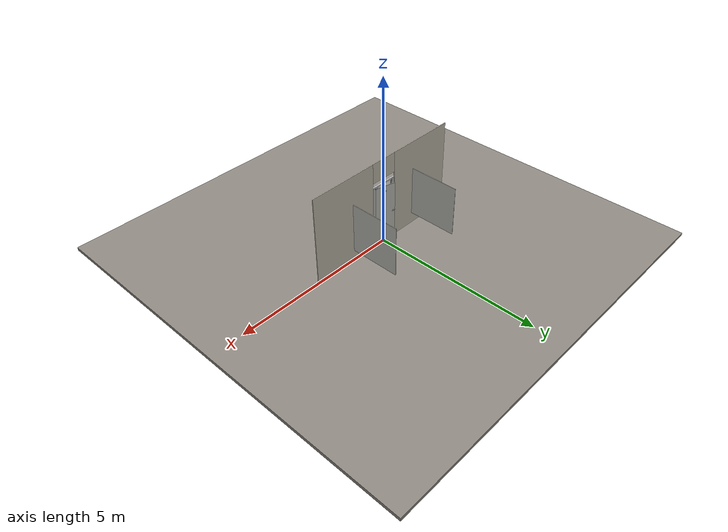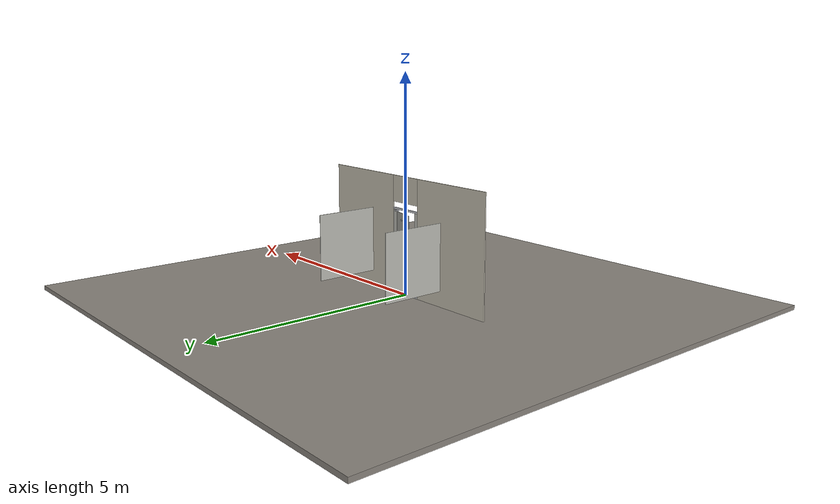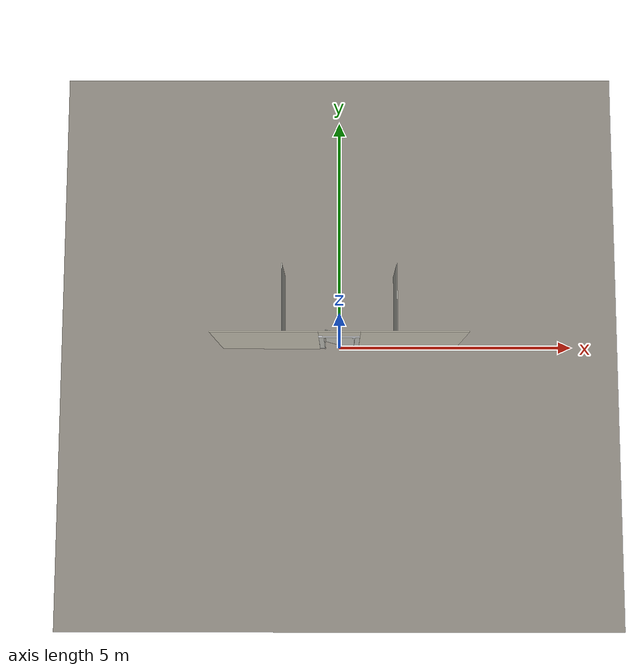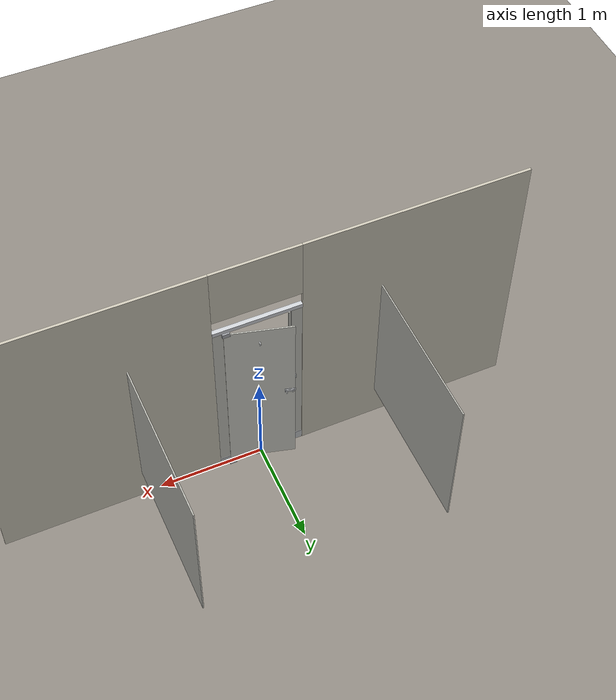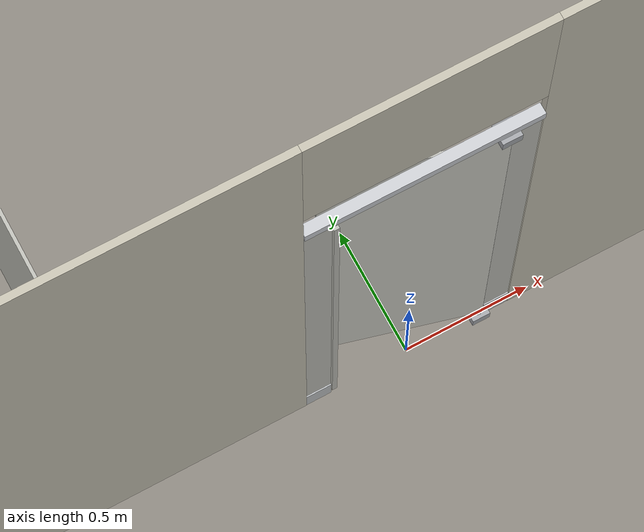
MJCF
<?xml version="1.0" ?>
<mujoco model="db0580_stall_full">
  <compiler angle="radian" meshdir="../../hardware" texturedir="../../textures" autolimits="true" inertiafromgeom="false"/>
  <option timestep="0.002" integrator="implicitfast" cone="elliptic" impratio="10" noslip_iterations="3">
    <flag multiccd="enable"/>
  </option>
  <size memory="16M"/>
  <default>
    <geom condim="4" solref="0.005 1" solimp="0.95 0.99 0.001"/>
    <joint solreflimit="0.005 1" solimplimit="0.95 0.99 0.001"/>
    <tendon solreflimit="0.005 1"/>
    <equality solref="0.002 1"/>
  </default>
  <visual>
    <headlight ambient="0.4 0.4 0.4" diffuse="0.7 0.7 0.7" specular="0.2 0.2 0.2"/>
    <quality shadowsize="4096"/>
    <map znear="0.01" zfar="60"/>
  </visual>
  <asset>
    <mesh name="coat_hook_d622d37ad0" file="coat_hook_d622d37ad0.obj"/>
    <material name="mat_floor" rgba="0.55 0.53 0.5 1" specular="0.2" shininess="0.15" reflectance="0"/>
    <material name="mat_wall" rgba="0.78 0.76 0.7 1" specular="0.2" shininess="0.1" reflectance="0"/>
    <material name="mat_frame" rgba="0.75 0.75 0.72 1" specular="0.2" shininess="0.65" reflectance="0"/>
    <material name="mat_shoe" rgba="0.75 0.76 0.77 1" specular="0.8" shininess="0.65" reflectance="0.4"/>
    <material name="mat_headrail" rgba="0.8 0.81 0.83 1" specular="0.8" shininess="0.6" reflectance="0.4"/>
    <material name="mat_leaf" rgba="0.75 0.75 0.72 1" specular="0.2" shininess="0.65" reflectance="0"/>
    <material name="mat_op_stainless" rgba="0.75 0.76 0.77 1" specular="0.8" shininess="0.65" reflectance="0.4"/>
    <material name="mat_hinge" rgba="0.65 0.66 0.68 1" specular="0.74" shininess="0.5" reflectance="0.36"/>
    <texture name="skybox" type="skybox" builtin="gradient" rgb1="0.6 0.7 0.85" rgb2="0.9 0.92 0.95" width="256" height="256"/>
  </asset>
  <worldbody>
    <light name="sun" pos="1.5 -2.5 4" dir="-0.3 0.5 -0.8" directional="true" diffuse="0.8 0.8 0.8" specular="0.3 0.3 0.3" castshadow="true"/>
    <light name="fill" pos="-1.5 2.5 3" dir="0.3 -0.5 -0.7" directional="true" diffuse="0.35 0.35 0.4" castshadow="false"/>
    <camera name="robot_view" pos="0 -2.59375 1.77625" xyaxes="1 0 0 0 0.26963 0.962964" fovy="52"/>
    <camera name="far_view" pos="0 2.59375 1.77625" xyaxes="-1 0 0 0 -0.26963 0.962964" fovy="52"/>
    <camera name="iso" pos="-1.97125 -2.17875 2.19125" xyaxes="0.741536 -0.670913 0 0.242917 0.268487 0.932151" fovy="46"/>
    <camera name="detail_handle" pos="-0.045 -0.7555 1.28" xyaxes="0.97561 0.219512 0 -0.070934 0.315262 0.94635" fovy="38"/>
    <geom name="floor" type="box" size="6 6 0.05" pos="0 0 -0.05" material="mat_floor" group="0" contype="1" conaffinity="1" friction="0.8 0.005 0.0001" density="2400"/>
    <geom name="wall_left" type="box" size="1.0445 0.0125 1.35" pos="-1.4555 0 1.35" material="mat_wall" group="0" contype="1" conaffinity="1" friction="0.6 0.005 0.0001" density="800"/>
    <geom name="wall_right" type="box" size="1.0445 0.0125 1.35" pos="1.4555 0 1.35" material="mat_wall" group="0" contype="1" conaffinity="1" friction="0.6 0.005 0.0001" density="800"/>
    <geom name="wall_header" type="box" size="0.411 0.0125 0.3" pos="0 0 2.4" material="mat_wall" group="0" contype="1" conaffinity="1" friction="0.6 0.005 0.0001" density="800"/>
    <geom name="pilaster_l" type="box" size="0.05 0.0065 0.915" pos="-0.361 0 1.015" material="mat_frame" group="0" contype="1" conaffinity="1" friction="0.6 0.005 0.0001" density="1400"/>
    <geom name="pilaster_shoe_l" type="box" size="0.05 0.0115 0.05" pos="-0.361 0 0.05" material="mat_shoe" group="1" contype="0" conaffinity="0" density="7900"/>
    <geom name="pilaster_r" type="box" size="0.05 0.0065 0.915" pos="0.361 0 1.015" material="mat_frame" group="0" contype="1" conaffinity="1" friction="0.6 0.005 0.0001" density="1400"/>
    <geom name="pilaster_shoe_r" type="box" size="0.05 0.0115 0.05" pos="0.361 0 0.05" material="mat_shoe" group="1" contype="0" conaffinity="0" density="7900"/>
    <geom name="headrail" type="box" size="0.411 0.02 0.02" pos="0 0 1.95" material="mat_headrail" group="0" contype="1" conaffinity="1" friction="0.6 0.005 0.0001" density="2700"/>
    <geom name="partition_l" type="box" size="0.006 0.75 0.75" pos="-1.161 0.75 1.1" material="mat_frame" group="0" contype="1" conaffinity="1" friction="0.6 0.005 0.0001" density="1400"/>
    <geom name="partition_r" type="box" size="0.006 0.75 0.75" pos="1.161 0.75 1.1" material="mat_frame" group="0" contype="1" conaffinity="1" friction="0.6 0.005 0.0001" density="1400"/>
    <geom name="latch_keeper_n" type="box" size="0.02 0.0025 0.02" pos="-0.331 0.007 1" material="mat_op_stainless" group="0" contype="1" conaffinity="1" friction="0.6 0.005 0.0001" density="7900"/>
    <geom name="latch_keeper_p" type="box" size="0.02 0.0025 0.02" pos="-0.331 0.022 1" material="mat_op_stainless" group="0" contype="1" conaffinity="1" friction="0.6 0.005 0.0001" density="7900"/>
    <geom name="latch_keeper_base" type="box" size="0.02 0.01 0.003" pos="-0.331 0.0145 0.976" material="mat_op_stainless" group="0" contype="1" conaffinity="1" friction="0.6 0.005 0.0001" density="7900"/>
    <geom name="stop_strip" type="box" size="0.01 0.006 0.915" pos="-0.301 -0.0125 0.965" material="mat_frame" group="0" contype="1" conaffinity="1" friction="0.6 0.005 0.0001" density="1400"/>
    <geom name="pivot_bottom_socket" type="box" size="0.035 0.035 0.029" pos="0.291 0 0.019" material="mat_hinge" group="1" contype="0" conaffinity="0" density="7850"/>
    <geom name="pivot_top_bracket" type="box" size="0.035 0.035 0.021" pos="0.291 0 1.909" material="mat_hinge" group="1" contype="0" conaffinity="0" density="7850"/>
    <site name="approach_point" pos="0 -1.2 0" quat="1 0 0 0" size="0.05" rgba="0.2 0.9 0.2 0.5" group="4"/>
    <site name="goal_point" pos="0 1 0" quat="1 0 0 0" size="0.05" rgba="0.2 0.9 0.2 0.5" group="4"/>
    <site name="door_plane_center" pos="0 0 1" quat="1 0 0 0" size="0.02" rgba="0.2 0.9 0.2 0.5" group="4"/>
    <body name="leaf_riser" pos="0.311 0 0">
      <inertial pos="0 0 0" mass="0.01" quat="1 0 0 0" diaginertia="0.000001 0.000001 0.000001"/>
      <joint name="leaf_rise" type="slide" axis="0 0 1" limited="true" range="0 0.03" damping="1" armature="0.5" ref="0.001667"/>
      <body name="leaf" pos="0 0 0">
        <inertial pos="-0.302046 0.067699 0.967675" mass="20.876409" quat="0.561118 0.430249 -0.561001 0.430476" diaginertia="0.653211389 5.869098297 6.521481912"/>
        <joint name="leaf_hinge" type="hinge" axis="0 0 -1" pos="-0.05 0 0" limited="true" range="0 1.919862" damping="0.09576" frictionloss="1.301986" armature="0.02" ref="0.261799"/>
        <geom name="leaf_slab" type="box" size="0.305 0.0065 0.915" pos="-0.302107 0.067552 0.965" quat="0.991445 0 0 -0.130526" material="mat_leaf" group="0" contype="1" conaffinity="1" friction="0.35 0.005 0.0001" density="1"/>
        <geom name="slide_latch_plate" type="box" size="0.048 0.001 0.022" pos="-0.551306 0.142089 1" quat="0.991445 0 0 -0.130526" material="mat_op_stainless" group="1" contype="0" conaffinity="0" density="7900"/>
        <geom name="slide_latch_guide_leg_n" type="box" size="0.005 0.0015 0.009" pos="-0.56952 0.155252 0.9835" quat="0.092296 0.092296 0.701057 0.701057" material="mat_op_stainless" group="1" contype="0" conaffinity="0" density="7800"/>
        <geom name="slide_latch_guide_leg_p" type="box" size="0.005 0.0015 0.009" pos="-0.56952 0.155252 1.0165" quat="0.092296 0.092296 0.701057 0.701057" material="mat_op_stainless" group="1" contype="0" conaffinity="0" density="7800"/>
        <geom name="slide_latch_guide_bridge" type="box" size="0.005 0.018 0.0015" pos="-0.567579 0.162496 1" quat="0.092296 0.092296 0.701057 0.701057" material="mat_op_stainless" group="1" contype="0" conaffinity="0" density="7800"/>
        <geom name="coat_hook" type="mesh" mesh="coat_hook_d622d37ad0" pos="-0.300424 0.07383 1.73" quat="0.092296 0.092296 0.701057 0.701057" material="mat_op_stainless" group="2" contype="0" conaffinity="0" density="7000"/>
        <geom name="pivot_bottom" type="cylinder" size="0.014 0.004" pos="-0.021022 -0.007765 0.045" quat="0.991445 0 0 -0.130526" material="mat_hinge" group="1" contype="0" conaffinity="0" density="7850"/>
        <geom name="pivot_top" type="cylinder" size="0.014 0.004" pos="-0.021022 -0.007765 1.884" quat="0.991445 0 0 -0.130526" material="mat_hinge" group="1" contype="0" conaffinity="0" density="7850"/>
        <body name="slide_latch" pos="-0.544665 0.147557 1" quat="0.991445 0 0 -0.130526">
          <inertial pos="0.004044 0.001618 0" mass="0.140251" quat="-0.027514 -0.027514 0.706571 0.706571" diaginertia="0.000009989 0.000084063 0.000085949"/>
          <joint name="slide_latch_slide" type="slide" axis="1 0 0" limited="true" range="0 0.03" damping="0.5" frictionloss="0.5" armature="0.1" ref="0.03"/>
          <geom name="slide_latch_bar" type="box" size="0.04 0.004 0.012" pos="0 0 0" material="mat_op_stainless" group="0" contype="1" conaffinity="1" friction="0.6 0.005 0.0001" density="7900"/>
          <geom name="slide_latch_knob" type="capsule" size="0.005 0.012" pos="0.03 0.012 0" quat="0.707107 -0.707107 0 0" material="mat_op_stainless" group="0" contype="1" conaffinity="1" friction="0.6 0.005 0.0001" density="7850"/>
          <site name="grip_latch" pos="0.03 0.03 0" quat="1 0 0 0" size="0.01" rgba="0.2 0.9 0.2 0.5" group="4"/>
        </body>
      </body>
    </body>
  </worldbody>
  <equality>
    <joint name="leaf_rise_couple" joint1="leaf_rise" joint2="leaf_hinge" polycoef="0 0.006366 0 0 0" active="true"/>
  </equality>
  <sensor>
    <jointpos name="leaf_hinge_pos" joint="leaf_hinge"/>
    <jointvel name="leaf_hinge_vel" joint="leaf_hinge"/>
    <jointpos name="slide_latch_slide_pos" joint="slide_latch_slide"/>
    <jointvel name="slide_latch_slide_vel" joint="slide_latch_slide"/>
  </sensor>
</mujoco>
